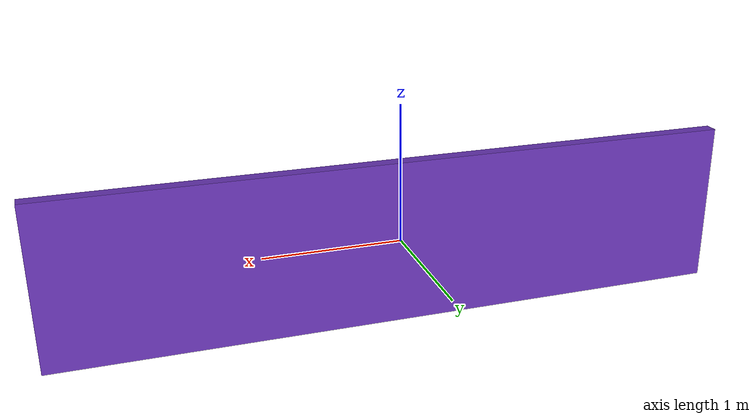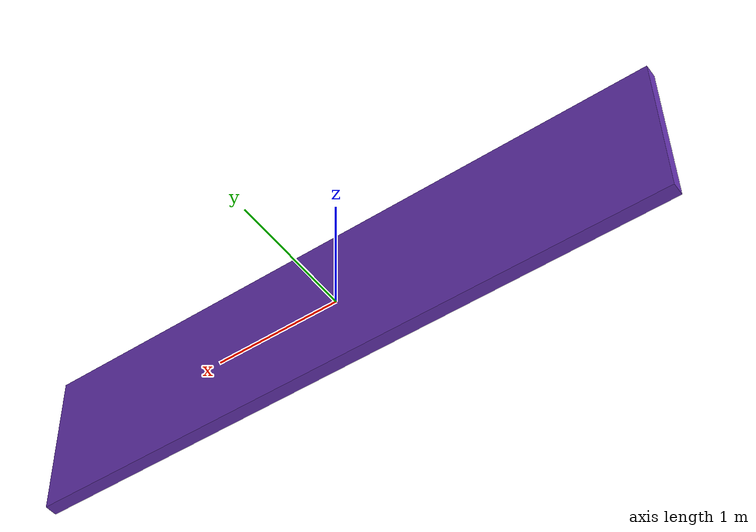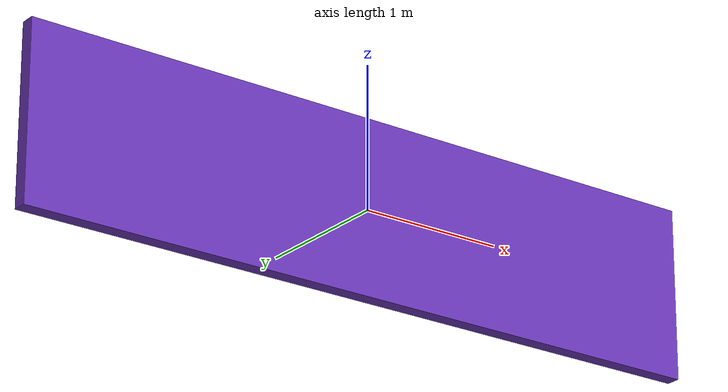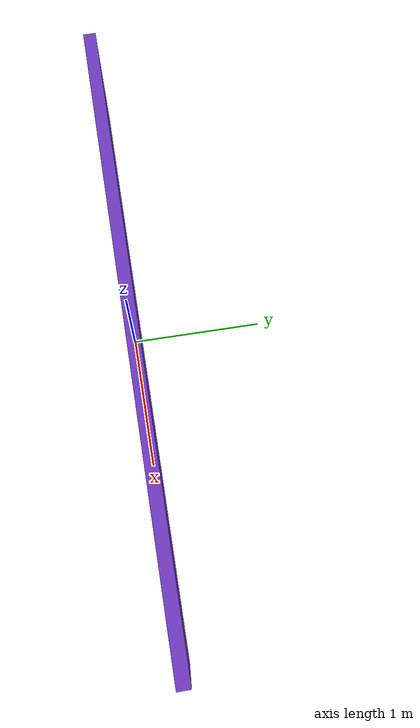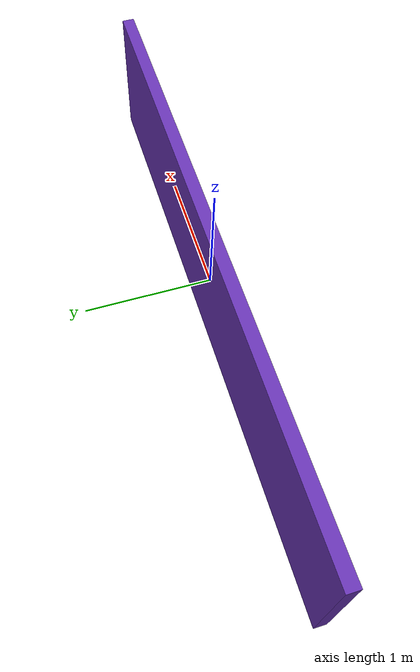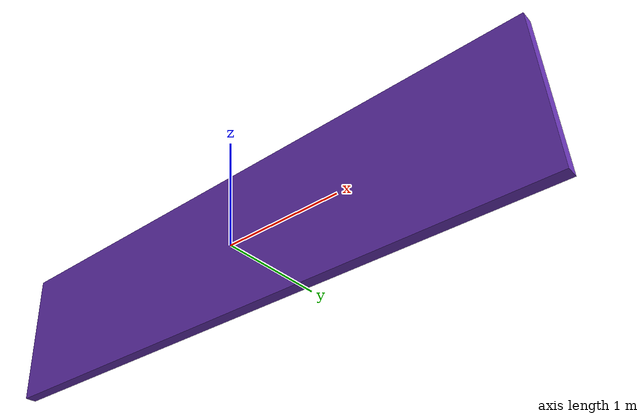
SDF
<?xml version="1.0" ?>=
<sdf version="1.8">
  <model name="wall">
    <static>true</static>
    <link name="wall_link">
      <collision name="collision">
        <geometry>
          <box>
            <size>5.0 0.1 1.2</size>
          </box>
        </geometry>
      </collision>

      <visual name="visual">
        <geometry>
          <box>

            <size>5.0 0.1 1.2</size>
          </box>
        </geometry>
        <material>
          <ambient>0.4 0.2 0.7 1</ambient>
          <diffuse>0.4 0.2 0.7 1</diffuse>
          <specular>0.4 0.2 0.7 1</specular>
        </material>
      </visual>

      <inertial>
        <mass>10.0</mass>
        <inertia>
          <ixx>0.1</ixx>
          <iyy>0.1</iyy>
          <izz>0.1</izz>
        </inertia>
      </inertial>
    </link>
  </model>
</sdf>
